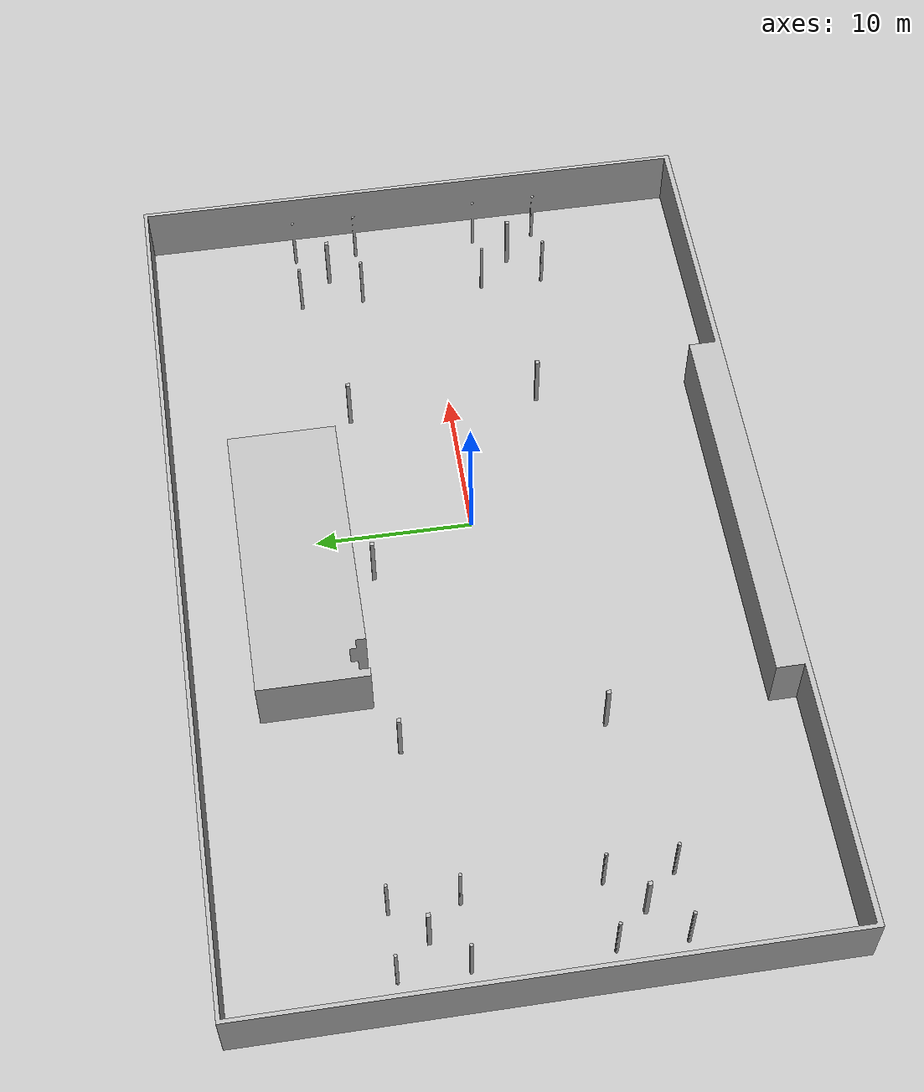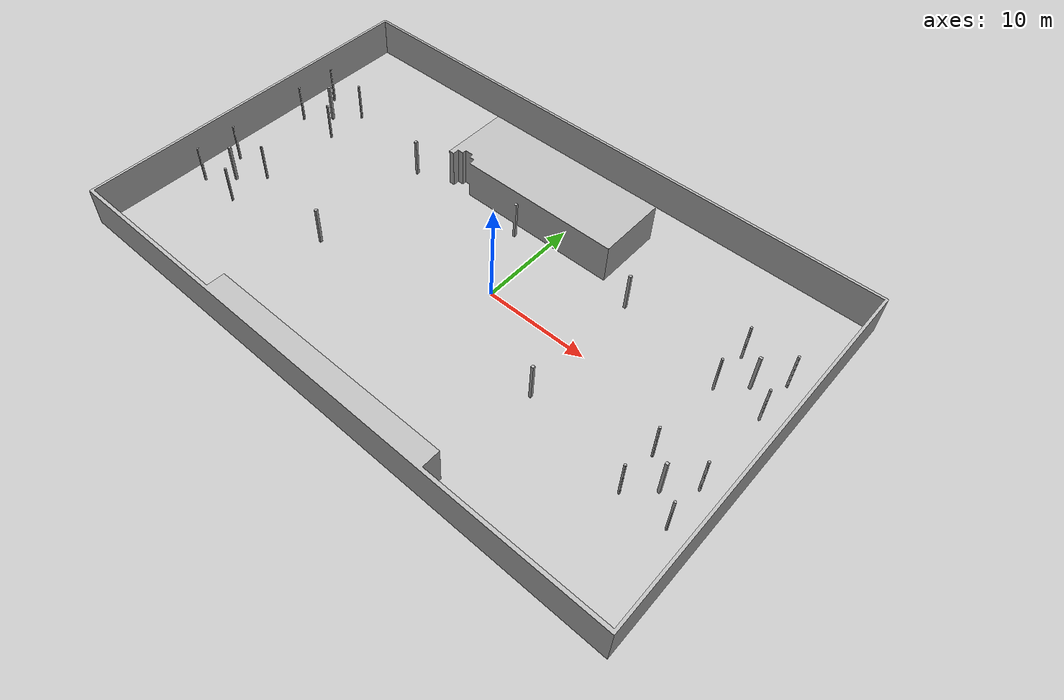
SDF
<?xml version="1.0"?>
<sdf version="1.6">
  <model name="tue_library/walls">
    <link name="1_link">
      <collision name="1_col">
        <geometry>
          <mesh>
            <uri>model://tue_library/walls/heightmap.stl</uri>
          </mesh>
        </geometry>
      </collision>
      <visual name="1_vis">
        <geometry>
          <mesh>
            <uri>model://tue_library/walls/heightmap.stl</uri>
          </mesh>
        </geometry>
      </visual>
      <pose>0 0 0 0 0 0</pose>
    </link>
    <static>true</static>
  </model>
</sdf>
